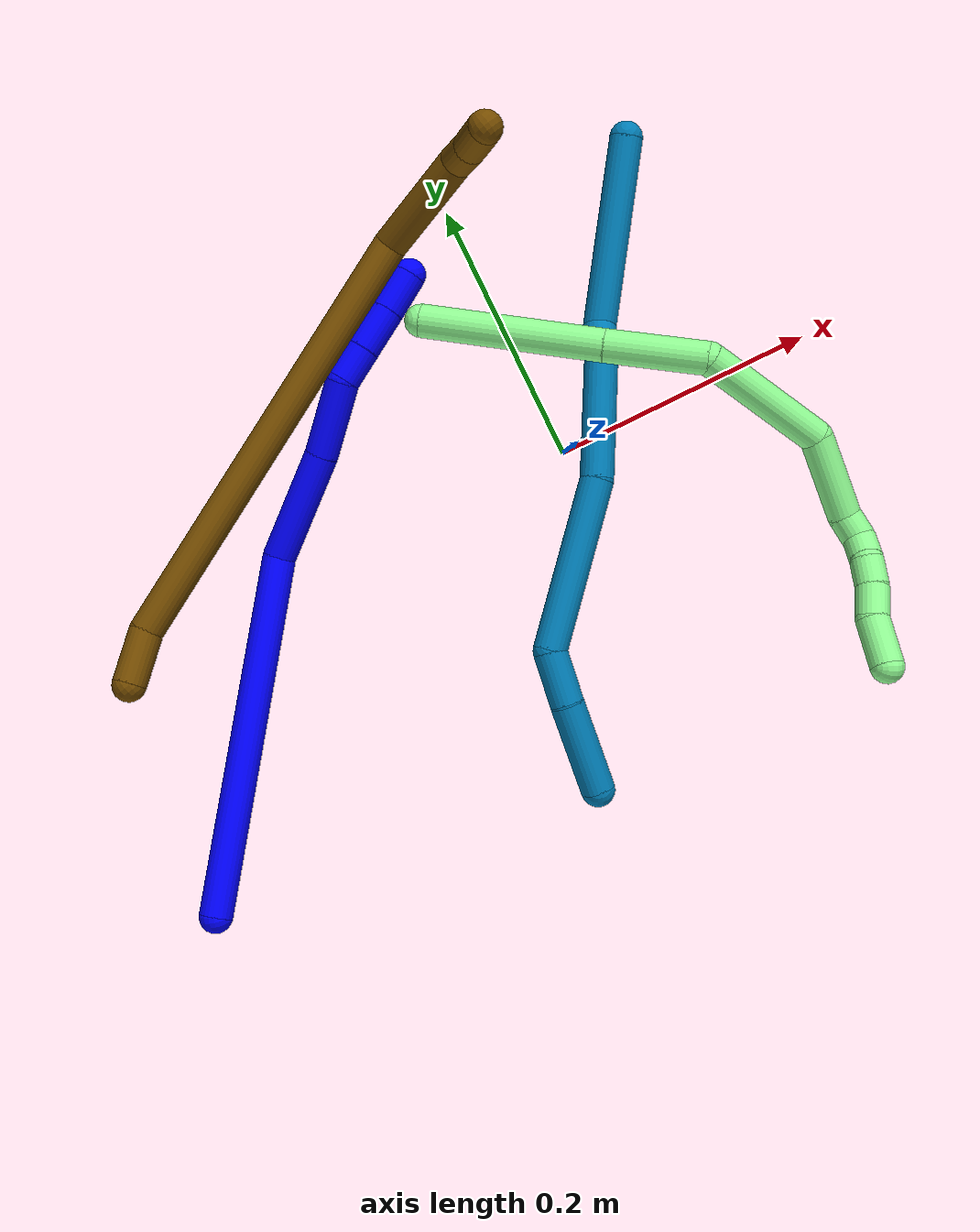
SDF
<sdf version="1.7">
 <world name="default">
  <model name="1">
   <static>0</static>
   <link name="1">
    <collision name="collision-cylinder-e_1_1_4">
     <pose>0.058932 0.015919 -0.118366 -3.0079 0.458381 -2.58269</pose>
     <geometry><cylinder><radius>0.0125</radius><length>0.266359</length></cylinder></geometry>
     <surface>
      <friction><ode><mu>1.16</mu><mu2>1.16</mu2><slip1>0</slip1><slip2>0</slip2></ode></friction>
      <contact><ode><kp>1e+06</kp><kd>1</kd><max_vel>0</max_vel><min_depth>0.001</min_depth></ode></contact>
     </surface>
    </collision>
    <visual name="visual-cylinder-e_1_1_4">
     <pose>0.058932 0.015919 -0.118366 -3.0079 0.458381 -2.58269</pose>
     <geometry><cylinder><radius>0.0125</radius><length>0.266359</length></cylinder></geometry>
     <material><ambient>0 0 1 1</ambient></material>
    </visual>
    <collision name="collision-cylinder-e_2_4_5">
     <pose>0.129483 0.052421 -0.271593 -2.60824 0.279512 -0.95106</pose>
     <geometry><cylinder><radius>0.0125</radius><length>0.084236</length></cylinder></geometry>
     <surface>
      <friction><ode><mu>1.16</mu><mu2>1.16</mu2><slip1>0</slip1><slip2>0</slip2></ode></friction>
      <contact><ode><kp>1e+06</kp><kd>1</kd><max_vel>0</max_vel><min_depth>0.001</min_depth></ode></contact>
     </surface>
    </collision>
    <visual name="visual-cylinder-e_2_4_5">
     <pose>0.129483 0.052421 -0.271593 -2.60824 0.279512 -0.95106</pose>
     <geometry><cylinder><radius>0.0125</radius><length>0.084236</length></cylinder></geometry>
     <material><ambient>0 0 1 1</ambient></material>
    </visual>
    <collision name="collision-cylinder-e_3_5_6">
     <pose>0.146951 0.085204 -0.331885 -2.69431 0.204426 -0.84731</pose>
     <geometry><cylinder><radius>0.0125</radius><length>0.057613</length></cylinder></geometry>
     <surface>
      <friction><ode><mu>1.16</mu><mu2>1.16</mu2><slip1>0</slip1><slip2>0</slip2></ode></friction>
      <contact><ode><kp>1e+06</kp><kd>1</kd><max_vel>0</max_vel><min_depth>0.001</min_depth></ode></contact>
     </surface>
    </collision>
    <visual name="visual-cylinder-e_3_5_6">
     <pose>0.146951 0.085204 -0.331885 -2.69431 0.204426 -0.84731</pose>
     <geometry><cylinder><radius>0.0125</radius><length>0.057613</length></cylinder></geometry>
     <material><ambient>0 0 1 1</ambient></material>
    </visual>
    <collision name="collision-cylinder-e_4_6_7">
     <pose>0.160203 0.103632 -0.366868 -2.56373 0.575913 -1.56722</pose>
     <geometry><cylinder><radius>0.0125</radius><length>0.027191</length></cylinder></geometry>
     <surface>
      <friction><ode><mu>1.16</mu><mu2>1.16</mu2><slip1>0</slip1><slip2>0</slip2></ode></friction>
      <contact><ode><kp>1e+06</kp><kd>1</kd><max_vel>0</max_vel><min_depth>0.001</min_depth></ode></contact>
     </surface>
    </collision>
    <visual name="visual-cylinder-e_4_6_7">
     <pose>0.160203 0.103632 -0.366868 -2.56373 0.575913 -1.56722</pose>
     <geometry><cylinder><radius>0.0125</radius><length>0.027191</length></cylinder></geometry>
     <material><ambient>0 0 1 1</ambient></material>
    </visual>
    <collision name="collision-cylinder-e_5_7_8">
     <pose>0.177124 0.117147 -0.388029 -2.58112 0.606932 -1.65504</pose>
     <geometry><cylinder><radius>0.0125</radius><length>0.033375</length></cylinder></geometry>
     <surface>
      <friction><ode><mu>1.16</mu><mu2>1.16</mu2><slip1>0</slip1><slip2>0</slip2></ode></friction>
      <contact><ode><kp>1e+06</kp><kd>1</kd><max_vel>0</max_vel><min_depth>0.001</min_depth></ode></contact>
     </surface>
    </collision>
    <visual name="visual-cylinder-e_5_7_8">
     <pose>0.177124 0.117147 -0.388029 -2.58112 0.606932 -1.65504</pose>
     <geometry><cylinder><radius>0.0125</radius><length>0.033375</length></cylinder></geometry>
     <material><ambient>0 0 1 1</ambient></material>
    </visual>
    <collision name="collision-cylinder-e_6_8_2">
     <pose>0.195546 0.130984 -0.410665 -2.60556 0.606874 -1.70156</pose>
     <geometry><cylinder><radius>0.0125</radius><length>0.031225</length></cylinder></geometry>
     <surface>
      <friction><ode><mu>1.16</mu><mu2>1.16</mu2><slip1>0</slip1><slip2>0</slip2></ode></friction>
      <contact><ode><kp>1e+06</kp><kd>1</kd><max_vel>0</max_vel><min_depth>0.001</min_depth></ode></contact>
     </surface>
    </collision>
    <visual name="visual-cylinder-e_6_8_2">
     <pose>0.195546 0.130984 -0.410665 -2.60556 0.606874 -1.70156</pose>
     <geometry><cylinder><radius>0.0125</radius><length>0.031225</length></cylinder></geometry>
     <material><ambient>0 0 1 1</ambient></material>
    </visual>
    <collision name="collision-sphere-2">
     <pose>0.20445 0.137533 -0.421691 0 -0 0</pose>
     <geometry><sphere><radius>0.0125</radius></sphere></geometry>
     <surface>
      <friction><ode><mu>1.16</mu><mu2>1.16</mu2><slip1>0</slip1><slip2>0</slip2></ode></friction>
      <contact><ode><kp>1e+06</kp><kd>1</kd><max_vel>0</max_vel><min_depth>0.001</min_depth></ode></contact>
     </surface>
    </collision>
    <visual name="visual-sphere-2">
     <pose>0.20445 0.137533 -0.421691 0 -0 0</pose>
     <geometry><sphere><radius>0.0125</radius></sphere></geometry>
     <material><ambient>0 0 1 1</ambient></material>
    </visual>
    <collision name="collision-sphere-4">
     <pose>0.117863 0.031838 -0.236732 0 -0 0</pose>
     <geometry><sphere><radius>0.0125</radius></sphere></geometry>
     <surface>
      <friction><ode><mu>1.16</mu><mu2>1.16</mu2><slip1>0</slip1><slip2>0</slip2></ode></friction>
      <contact><ode><kp>1e+06</kp><kd>1</kd><max_vel>0</max_vel><min_depth>0.001</min_depth></ode></contact>
     </surface>
    </collision>
    <visual name="visual-sphere-4">
     <pose>0.117863 0.031838 -0.236732 0 -0 0</pose>
     <geometry><sphere><radius>0.0125</radius></sphere></geometry>
     <material><ambient>0 0 1 1</ambient></material>
    </visual>
    <collision name="collision-sphere-1">
     <geometry><sphere><radius>0.0125</radius></sphere></geometry>
     <surface>
      <friction><ode><mu>1.16</mu><mu2>1.16</mu2><slip1>0</slip1><slip2>0</slip2></ode></friction>
      <contact><ode><kp>1e+06</kp><kd>1</kd><max_vel>0</max_vel><min_depth>0.001</min_depth></ode></contact>
     </surface>
    </collision>
    <visual name="visual-sphere-1">
     <geometry><sphere><radius>0.0125</radius></sphere></geometry>
     <material><ambient>0 0 1 1</ambient></material>
    </visual>
    <collision name="collision-sphere-8">
     <pose>0.186642 0.124434 -0.399639 0 -0 0</pose>
     <geometry><sphere><radius>0.0125</radius></sphere></geometry>
     <surface>
      <friction><ode><mu>1.16</mu><mu2>1.16</mu2><slip1>0</slip1><slip2>0</slip2></ode></friction>
      <contact><ode><kp>1e+06</kp><kd>1</kd><max_vel>0</max_vel><min_depth>0.001</min_depth></ode></contact>
     </surface>
    </collision>
    <visual name="visual-sphere-8">
     <pose>0.186642 0.124434 -0.399639 0 -0 0</pose>
     <geometry><sphere><radius>0.0125</radius></sphere></geometry>
     <material><ambient>0 0 1 1</ambient></material>
    </visual>
    <collision name="collision-sphere-5">
     <pose>0.141103 0.073004 -0.306453 0 -0 0</pose>
     <geometry><sphere><radius>0.0125</radius></sphere></geometry>
     <surface>
      <friction><ode><mu>1.16</mu><mu2>1.16</mu2><slip1>0</slip1><slip2>0</slip2></ode></friction>
      <contact><ode><kp>1e+06</kp><kd>1</kd><max_vel>0</max_vel><min_depth>0.001</min_depth></ode></contact>
     </surface>
    </collision>
    <visual name="visual-sphere-5">
     <pose>0.141103 0.073004 -0.306453 0 -0 0</pose>
     <geometry><sphere><radius>0.0125</radius></sphere></geometry>
     <material><ambient>0 0 1 1</ambient></material>
    </visual>
    <collision name="collision-sphere-6">
     <pose>0.152798 0.097404 -0.357317 0 -0 0</pose>
     <geometry><sphere><radius>0.0125</radius></sphere></geometry>
     <surface>
      <friction><ode><mu>1.16</mu><mu2>1.16</mu2><slip1>0</slip1><slip2>0</slip2></ode></friction>
      <contact><ode><kp>1e+06</kp><kd>1</kd><max_vel>0</max_vel><min_depth>0.001</min_depth></ode></contact>
     </surface>
    </collision>
    <visual name="visual-sphere-6">
     <pose>0.152798 0.097404 -0.357317 0 -0 0</pose>
     <geometry><sphere><radius>0.0125</radius></sphere></geometry>
     <material><ambient>0 0 1 1</ambient></material>
    </visual>
    <collision name="collision-sphere-7">
     <pose>0.167607 0.10986 -0.376419 0 -0 0</pose>
     <geometry><sphere><radius>0.0125</radius></sphere></geometry>
     <surface>
      <friction><ode><mu>1.16</mu><mu2>1.16</mu2><slip1>0</slip1><slip2>0</slip2></ode></friction>
      <contact><ode><kp>1e+06</kp><kd>1</kd><max_vel>0</max_vel><min_depth>0.001</min_depth></ode></contact>
     </surface>
    </collision>
    <visual name="visual-sphere-7">
     <pose>0.167607 0.10986 -0.376419 0 -0 0</pose>
     <geometry><sphere><radius>0.0125</radius></sphere></geometry>
     <material><ambient>0 0 1 1</ambient></material>
    </visual>
    <inertial>
     <pose>0.102888 0.048765 -0.218552 0 -0 0</pose>
     <mass>0.5</mass>
     <inertia>
      <ixx>-0.001966</ixx>
      <ixy>0</ixy>
      <ixz>0</ixz>
      <iyy>0.000548</iyy>
      <iyz>0</iyz>
      <izz>-0.000987</izz>
     </inertia>
    </inertial>
   </link>
   <pose>-0.376897 -0.193649 0.04486 1.90108 0.944526 0.016253</pose>
  </model>
  <model name="9">
   <static>0</static>
   <link name="9">
    <collision name="collision-cylinder-e_1_1_4">
     <pose>0.023363 0.012929 -0.020882 -2.58721 0.7604 -1.90423</pose>
     <geometry><cylinder><radius>0.0125</radius><length>0.067795</length></cylinder></geometry>
     <surface>
      <friction><ode><mu>1.16</mu><mu2>1.16</mu2><slip1>0</slip1><slip2>0</slip2></ode></friction>
      <contact><ode><kp>1e+06</kp><kd>1</kd><max_vel>0</max_vel><min_depth>0.001</min_depth></ode></contact>
     </surface>
    </collision>
    <visual name="visual-cylinder-e_1_1_4">
     <pose>0.023363 0.012929 -0.020882 -2.58721 0.7604 -1.90423</pose>
     <geometry><cylinder><radius>0.0125</radius><length>0.067795</length></cylinder></geometry>
     <material><ambient>0 0.490196 0.709804 1</ambient></material>
    </visual>
    <collision name="collision-cylinder-e_2_4_5">
     <pose>0.061213 0.035201 -0.051946 -2.39914 0.80907 -1.66584</pose>
     <geometry><cylinder><radius>0.0125</radius><length>0.040042</length></cylinder></geometry>
     <surface>
      <friction><ode><mu>1.16</mu><mu2>1.16</mu2><slip1>0</slip1><slip2>0</slip2></ode></friction>
      <contact><ode><kp>1e+06</kp><kd>1</kd><max_vel>0</max_vel><min_depth>0.001</min_depth></ode></contact>
     </surface>
    </collision>
    <visual name="visual-cylinder-e_2_4_5">
     <pose>0.061213 0.035201 -0.051946 -2.39914 0.80907 -1.66584</pose>
     <geometry><cylinder><radius>0.0125</radius><length>0.040042</length></cylinder></geometry>
     <material><ambient>0 0.490196 0.709804 1</ambient></material>
    </visual>
    <collision name="collision-cylinder-e_3_5_6">
     <pose>0.095335 0.100058 -0.088369 -2.01236 0.309471 -0.482916</pose>
     <geometry><cylinder><radius>0.0125</radius><length>0.128935</length></cylinder></geometry>
     <surface>
      <friction><ode><mu>1.16</mu><mu2>1.16</mu2><slip1>0</slip1><slip2>0</slip2></ode></friction>
      <contact><ode><kp>1e+06</kp><kd>1</kd><max_vel>0</max_vel><min_depth>0.001</min_depth></ode></contact>
     </surface>
    </collision>
    <visual name="visual-cylinder-e_3_5_6">
     <pose>0.095335 0.100058 -0.088369 -2.01236 0.309471 -0.482916</pose>
     <geometry><cylinder><radius>0.0125</radius><length>0.128935</length></cylinder></geometry>
     <material><ambient>0 0.490196 0.709804 1</ambient></material>
    </visual>
    <collision name="collision-cylinder-e_4_6_7">
     <pose>0.139962 0.192849 -0.132088 -2.00922 0.545606 -0.829316</pose>
     <geometry><cylinder><radius>0.0125</radius><length>0.096324</length></cylinder></geometry>
     <surface>
      <friction><ode><mu>1.16</mu><mu2>1.16</mu2><slip1>0</slip1><slip2>0</slip2></ode></friction>
      <contact><ode><kp>1e+06</kp><kd>1</kd><max_vel>0</max_vel><min_depth>0.001</min_depth></ode></contact>
     </surface>
    </collision>
    <visual name="visual-cylinder-e_4_6_7">
     <pose>0.139962 0.192849 -0.132088 -2.00922 0.545606 -0.829316</pose>
     <geometry><cylinder><radius>0.0125</radius><length>0.096324</length></cylinder></geometry>
     <material><ambient>0 0.490196 0.709804 1</ambient></material>
    </visual>
    <collision name="collision-cylinder-e_5_7_8">
     <pose>0.172494 0.239497 -0.148824 -1.492 0.675944 -0.6281</pose>
     <geometry><cylinder><radius>0.0125</radius><length>0.024103</length></cylinder></geometry>
     <surface>
      <friction><ode><mu>1.16</mu><mu2>1.16</mu2><slip1>0</slip1><slip2>0</slip2></ode></friction>
      <contact><ode><kp>1e+06</kp><kd>1</kd><max_vel>0</max_vel><min_depth>0.001</min_depth></ode></contact>
     </surface>
    </collision>
    <visual name="visual-cylinder-e_5_7_8">
     <pose>0.172494 0.239497 -0.148824 -1.492 0.675944 -0.6281</pose>
     <geometry><cylinder><radius>0.0125</radius><length>0.024103</length></cylinder></geometry>
     <material><ambient>0 0.490196 0.709804 1</ambient></material>
    </visual>
    <collision name="collision-cylinder-e_6_8_2">
     <pose>0.208148 0.304016 -0.183672 -2.14387 0.4047 -0.720274</pose>
     <geometry><cylinder><radius>0.0125</radius><length>0.142802</length></cylinder></geometry>
     <surface>
      <friction><ode><mu>1.16</mu><mu2>1.16</mu2><slip1>0</slip1><slip2>0</slip2></ode></friction>
      <contact><ode><kp>1e+06</kp><kd>1</kd><max_vel>0</max_vel><min_depth>0.001</min_depth></ode></contact>
     </surface>
    </collision>
    <visual name="visual-cylinder-e_6_8_2">
     <pose>0.208148 0.304016 -0.183672 -2.14387 0.4047 -0.720274</pose>
     <geometry><cylinder><radius>0.0125</radius><length>0.142802</length></cylinder></geometry>
     <material><ambient>0 0.490196 0.709804 1</ambient></material>
    </visual>
    <collision name="collision-sphere-2">
     <pose>0.236261 0.359164 -0.21926 0 -0 0</pose>
     <geometry><sphere><radius>0.0125</radius></sphere></geometry>
     <surface>
      <friction><ode><mu>1.16</mu><mu2>1.16</mu2><slip1>0</slip1><slip2>0</slip2></ode></friction>
      <contact><ode><kp>1e+06</kp><kd>1</kd><max_vel>0</max_vel><min_depth>0.001</min_depth></ode></contact>
     </surface>
    </collision>
    <visual name="visual-sphere-2">
     <pose>0.236261 0.359164 -0.21926 0 -0 0</pose>
     <geometry><sphere><radius>0.0125</radius></sphere></geometry>
     <material><ambient>0 0.490196 0.709804 1</ambient></material>
    </visual>
    <collision name="collision-sphere-4">
     <pose>0.046725 0.025859 -0.041765 0 -0 0</pose>
     <geometry><sphere><radius>0.0125</radius></sphere></geometry>
     <surface>
      <friction><ode><mu>1.16</mu><mu2>1.16</mu2><slip1>0</slip1><slip2>0</slip2></ode></friction>
      <contact><ode><kp>1e+06</kp><kd>1</kd><max_vel>0</max_vel><min_depth>0.001</min_depth></ode></contact>
     </surface>
    </collision>
    <visual name="visual-sphere-4">
     <pose>0.046725 0.025859 -0.041765 0 -0 0</pose>
     <geometry><sphere><radius>0.0125</radius></sphere></geometry>
     <material><ambient>0 0.490196 0.709804 1</ambient></material>
    </visual>
    <collision name="collision-sphere-1">
     <geometry><sphere><radius>0.0125</radius></sphere></geometry>
     <surface>
      <friction><ode><mu>1.16</mu><mu2>1.16</mu2><slip1>0</slip1><slip2>0</slip2></ode></friction>
      <contact><ode><kp>1e+06</kp><kd>1</kd><max_vel>0</max_vel><min_depth>0.001</min_depth></ode></contact>
     </surface>
    </collision>
    <visual name="visual-sphere-1">
     <geometry><sphere><radius>0.0125</radius></sphere></geometry>
     <material><ambient>0 0.490196 0.709804 1</ambient></material>
    </visual>
    <collision name="collision-sphere-8">
     <pose>0.180034 0.248869 -0.148084 0 -0 0</pose>
     <geometry><sphere><radius>0.0125</radius></sphere></geometry>
     <surface>
      <friction><ode><mu>1.16</mu><mu2>1.16</mu2><slip1>0</slip1><slip2>0</slip2></ode></friction>
      <contact><ode><kp>1e+06</kp><kd>1</kd><max_vel>0</max_vel><min_depth>0.001</min_depth></ode></contact>
     </surface>
    </collision>
    <visual name="visual-sphere-8">
     <pose>0.180034 0.248869 -0.148084 0 -0 0</pose>
     <geometry><sphere><radius>0.0125</radius></sphere></geometry>
     <material><ambient>0 0.490196 0.709804 1</ambient></material>
    </visual>
    <collision name="collision-sphere-5">
     <pose>0.075701 0.044543 -0.062127 0 -0 0</pose>
     <geometry><sphere><radius>0.0125</radius></sphere></geometry>
     <surface>
      <friction><ode><mu>1.16</mu><mu2>1.16</mu2><slip1>0</slip1><slip2>0</slip2></ode></friction>
      <contact><ode><kp>1e+06</kp><kd>1</kd><max_vel>0</max_vel><min_depth>0.001</min_depth></ode></contact>
     </surface>
    </collision>
    <visual name="visual-sphere-5">
     <pose>0.075701 0.044543 -0.062127 0 -0 0</pose>
     <geometry><sphere><radius>0.0125</radius></sphere></geometry>
     <material><ambient>0 0.490196 0.709804 1</ambient></material>
    </visual>
    <collision name="collision-sphere-6">
     <pose>0.114969 0.155573 -0.11461 0 -0 0</pose>
     <geometry><sphere><radius>0.0125</radius></sphere></geometry>
     <surface>
      <friction><ode><mu>1.16</mu><mu2>1.16</mu2><slip1>0</slip1><slip2>0</slip2></ode></friction>
      <contact><ode><kp>1e+06</kp><kd>1</kd><max_vel>0</max_vel><min_depth>0.001</min_depth></ode></contact>
     </surface>
    </collision>
    <visual name="visual-sphere-6">
     <pose>0.114969 0.155573 -0.11461 0 -0 0</pose>
     <geometry><sphere><radius>0.0125</radius></sphere></geometry>
     <material><ambient>0 0.490196 0.709804 1</ambient></material>
    </visual>
    <collision name="collision-sphere-7">
     <pose>0.164955 0.230125 -0.149565 0 -0 0</pose>
     <geometry><sphere><radius>0.0125</radius></sphere></geometry>
     <surface>
      <friction><ode><mu>1.16</mu><mu2>1.16</mu2><slip1>0</slip1><slip2>0</slip2></ode></friction>
      <contact><ode><kp>1e+06</kp><kd>1</kd><max_vel>0</max_vel><min_depth>0.001</min_depth></ode></contact>
     </surface>
    </collision>
    <visual name="visual-sphere-7">
     <pose>0.164955 0.230125 -0.149565 0 -0 0</pose>
     <geometry><sphere><radius>0.0125</radius></sphere></geometry>
     <material><ambient>0 0.490196 0.709804 1</ambient></material>
    </visual>
    <inertial>
     <pose>0.12738 0.165899 -0.114857 0 -0 0</pose>
     <mass>0.5</mass>
     <inertia>
      <ixx>7.8e-05</ixx>
      <ixy>0</ixy>
      <ixz>0</ixz>
      <iyy>-0.000344</iyy>
      <iyz>0</iyz>
      <izz>-0.000664</izz>
     </inertia>
    </inertial>
   </link>
   <pose>-0.086617 -0.231244 0.050634 -2.7078 0.357368 2.12296</pose>
  </model>
  <model name="12">
   <static>0</static>
   <link name="12">
    <collision name="collision-cylinder-e_1_1_4">
     <pose>0.016419 -0.002026 -0.011129 2.96148 0.967519 2.80118</pose>
     <geometry><cylinder><radius>0.0125</radius><length>0.039876</length></cylinder></geometry>
     <surface>
      <friction><ode><mu>1.16</mu><mu2>1.16</mu2><slip1>0</slip1><slip2>0</slip2></ode></friction>
      <contact><ode><kp>1e+06</kp><kd>1</kd><max_vel>0</max_vel><min_depth>0.001</min_depth></ode></contact>
     </surface>
    </collision>
    <visual name="visual-cylinder-e_1_1_4">
     <pose>0.016419 -0.002026 -0.011129 2.96148 0.967519 2.80118</pose>
     <geometry><cylinder><radius>0.0125</radius><length>0.039876</length></cylinder></geometry>
     <material><ambient>0.466667 0.301961 0 1</ambient></material>
    </visual>
    <collision name="collision-cylinder-e_2_4_5">
     <pose>0.1858 0.014108 -0.076215 -2.81693 1.21449 -2.67864</pose>
     <geometry><cylinder><radius>0.0125</radius><length>0.326428</length></cylinder></geometry>
     <surface>
      <friction><ode><mu>1.16</mu><mu2>1.16</mu2><slip1>0</slip1><slip2>0</slip2></ode></friction>
      <contact><ode><kp>1e+06</kp><kd>1</kd><max_vel>0</max_vel><min_depth>0.001</min_depth></ode></contact>
     </surface>
    </collision>
    <visual name="visual-cylinder-e_2_4_5">
     <pose>0.1858 0.014108 -0.076215 -2.81693 1.21449 -2.67864</pose>
     <geometry><cylinder><radius>0.0125</radius><length>0.326428</length></cylinder></geometry>
     <material><ambient>0.466667 0.301961 0 1</ambient></material>
    </visual>
    <collision name="collision-cylinder-e_3_5_6">
     <pose>0.369047 0.058365 -0.136642 -1.81379 0.844771 -1.04284</pose>
     <geometry><cylinder><radius>0.0125</radius><length>0.080994</length></cylinder></geometry>
     <surface>
      <friction><ode><mu>1.16</mu><mu2>1.16</mu2><slip1>0</slip1><slip2>0</slip2></ode></friction>
      <contact><ode><kp>1e+06</kp><kd>1</kd><max_vel>0</max_vel><min_depth>0.001</min_depth></ode></contact>
     </surface>
    </collision>
    <visual name="visual-cylinder-e_3_5_6">
     <pose>0.369047 0.058365 -0.136642 -1.81379 0.844771 -1.04284</pose>
     <geometry><cylinder><radius>0.0125</radius><length>0.080994</length></cylinder></geometry>
     <material><ambient>0.466667 0.301961 0 1</ambient></material>
    </visual>
    <collision name="collision-cylinder-e_4_6_7">
     <pose>0.403239 0.095406 -0.143039 -1.56419 0.342886 -0.340673</pose>
     <geometry><cylinder><radius>0.0125</radius><length>0.023245</length></cylinder></geometry>
     <surface>
      <friction><ode><mu>1.16</mu><mu2>1.16</mu2><slip1>0</slip1><slip2>0</slip2></ode></friction>
      <contact><ode><kp>1e+06</kp><kd>1</kd><max_vel>0</max_vel><min_depth>0.001</min_depth></ode></contact>
     </surface>
    </collision>
    <visual name="visual-cylinder-e_4_6_7">
     <pose>0.403239 0.095406 -0.143039 -1.56419 0.342886 -0.340673</pose>
     <geometry><cylinder><radius>0.0125</radius><length>0.023245</length></cylinder></geometry>
     <material><ambient>0.466667 0.301961 0 1</ambient></material>
    </visual>
    <collision name="collision-cylinder-e_5_7_2">
     <pose>0.41091 0.120578 -0.143585 -1.61426 0.258379 -0.269724</pose>
     <geometry><cylinder><radius>0.0125</radius><length>0.029457</length></cylinder></geometry>
     <surface>
      <friction><ode><mu>1.16</mu><mu2>1.16</mu2><slip1>0</slip1><slip2>0</slip2></ode></friction>
      <contact><ode><kp>1e+06</kp><kd>1</kd><max_vel>0</max_vel><min_depth>0.001</min_depth></ode></contact>
     </surface>
    </collision>
    <visual name="visual-cylinder-e_5_7_2">
     <pose>0.41091 0.120578 -0.143585 -1.61426 0.258379 -0.269724</pose>
     <geometry><cylinder><radius>0.0125</radius><length>0.029457</length></cylinder></geometry>
     <material><ambient>0.466667 0.301961 0 1</ambient></material>
    </visual>
    <collision name="collision-sphere-2">
     <pose>0.414673 0.134804 -0.144204 0 -0 0</pose>
     <geometry><sphere><radius>0.0125</radius></sphere></geometry>
     <surface>
      <friction><ode><mu>1.16</mu><mu2>1.16</mu2><slip1>0</slip1><slip2>0</slip2></ode></friction>
      <contact><ode><kp>1e+06</kp><kd>1</kd><max_vel>0</max_vel><min_depth>0.001</min_depth></ode></contact>
     </surface>
    </collision>
    <visual name="visual-sphere-2">
     <pose>0.414673 0.134804 -0.144204 0 -0 0</pose>
     <geometry><sphere><radius>0.0125</radius></sphere></geometry>
     <material><ambient>0.466667 0.301961 0 1</ambient></material>
    </visual>
    <collision name="collision-sphere-7">
     <pose>0.407147 0.106352 -0.142966 0 -0 0</pose>
     <geometry><sphere><radius>0.0125</radius></sphere></geometry>
     <surface>
      <friction><ode><mu>1.16</mu><mu2>1.16</mu2><slip1>0</slip1><slip2>0</slip2></ode></friction>
      <contact><ode><kp>1e+06</kp><kd>1</kd><max_vel>0</max_vel><min_depth>0.001</min_depth></ode></contact>
     </surface>
    </collision>
    <visual name="visual-sphere-7">
     <pose>0.407147 0.106352 -0.142966 0 -0 0</pose>
     <geometry><sphere><radius>0.0125</radius></sphere></geometry>
     <material><ambient>0.466667 0.301961 0 1</ambient></material>
    </visual>
    <collision name="collision-sphere-6">
     <pose>0.399331 0.084461 -0.143111 0 -0 0</pose>
     <geometry><sphere><radius>0.0125</radius></sphere></geometry>
     <surface>
      <friction><ode><mu>1.16</mu><mu2>1.16</mu2><slip1>0</slip1><slip2>0</slip2></ode></friction>
      <contact><ode><kp>1e+06</kp><kd>1</kd><max_vel>0</max_vel><min_depth>0.001</min_depth></ode></contact>
     </surface>
    </collision>
    <visual name="visual-sphere-6">
     <pose>0.399331 0.084461 -0.143111 0 -0 0</pose>
     <geometry><sphere><radius>0.0125</radius></sphere></geometry>
     <material><ambient>0.466667 0.301961 0 1</ambient></material>
    </visual>
    <collision name="collision-sphere-5">
     <pose>0.338763 0.032268 -0.130173 0 -0 0</pose>
     <geometry><sphere><radius>0.0125</radius></sphere></geometry>
     <surface>
      <friction><ode><mu>1.16</mu><mu2>1.16</mu2><slip1>0</slip1><slip2>0</slip2></ode></friction>
      <contact><ode><kp>1e+06</kp><kd>1</kd><max_vel>0</max_vel><min_depth>0.001</min_depth></ode></contact>
     </surface>
    </collision>
    <visual name="visual-sphere-5">
     <pose>0.338763 0.032268 -0.130173 0 -0 0</pose>
     <geometry><sphere><radius>0.0125</radius></sphere></geometry>
     <material><ambient>0.466667 0.301961 0 1</ambient></material>
    </visual>
    <collision name="collision-sphere-1">
     <geometry><sphere><radius>0.0125</radius></sphere></geometry>
     <surface>
      <friction><ode><mu>1.16</mu><mu2>1.16</mu2><slip1>0</slip1><slip2>0</slip2></ode></friction>
      <contact><ode><kp>1e+06</kp><kd>1</kd><max_vel>0</max_vel><min_depth>0.001</min_depth></ode></contact>
     </surface>
    </collision>
    <visual name="visual-sphere-1">
     <geometry><sphere><radius>0.0125</radius></sphere></geometry>
     <material><ambient>0.466667 0.301961 0 1</ambient></material>
    </visual>
    <collision name="collision-sphere-4">
     <pose>0.032837 -0.004053 -0.022257 0 -0 0</pose>
     <geometry><sphere><radius>0.0125</radius></sphere></geometry>
     <surface>
      <friction><ode><mu>1.16</mu><mu2>1.16</mu2><slip1>0</slip1><slip2>0</slip2></ode></friction>
      <contact><ode><kp>1e+06</kp><kd>1</kd><max_vel>0</max_vel><min_depth>0.001</min_depth></ode></contact>
     </surface>
    </collision>
    <visual name="visual-sphere-4">
     <pose>0.032837 -0.004053 -0.022257 0 -0 0</pose>
     <geometry><sphere><radius>0.0125</radius></sphere></geometry>
     <material><ambient>0.466667 0.301961 0 1</ambient></material>
    </visual>
    <inertial>
     <pose>0.225346 0.030042 -0.087888 0 -0 0</pose>
     <mass>0.5</mass>
     <inertia>
      <ixx>-0.00134</ixx>
      <ixy>0</ixy>
      <ixz>0</ixz>
      <iyy>0.002418</iyy>
      <iyz>0</iyz>
      <izz>-0.003141</izz>
     </inertia>
    </inertial>
   </link>
   <pose>-0.352204 -0.014555 0.082446 1.62916 0.182605 0.23057</pose>
  </model>
  <model name="13">
   <static>0</static>
   <link name="13">
    <collision name="collision-cylinder-e_1_1_4">
     <pose>-0.033571 -0.027706 0.053154 0.480489 -0.510533 -0.127684</pose>
     <geometry><cylinder><radius>0.0125</radius><length>0.137405</length></cylinder></geometry>
     <surface>
      <friction><ode><mu>1.16</mu><mu2>1.16</mu2><slip1>0</slip1><slip2>0</slip2></ode></friction>
      <contact><ode><kp>1e+06</kp><kd>1</kd><max_vel>0</max_vel><min_depth>0.001</min_depth></ode></contact>
     </surface>
    </collision>
    <visual name="visual-cylinder-e_1_1_4">
     <pose>-0.033571 -0.027706 0.053154 0.480489 -0.510533 -0.127684</pose>
     <geometry><cylinder><radius>0.0125</radius><length>0.137405</length></cylinder></geometry>
     <material><ambient>0.564706 0.984314 0.572549 1</ambient></material>
    </visual>
    <collision name="collision-cylinder-e_2_4_5">
     <pose>-0.085623 -0.070144 0.135962 0.461094 -0.50908 -0.121989</pose>
     <geometry><cylinder><radius>0.0125</radius><length>0.075839</length></cylinder></geometry>
     <surface>
      <friction><ode><mu>1.16</mu><mu2>1.16</mu2><slip1>0</slip1><slip2>0</slip2></ode></friction>
      <contact><ode><kp>1e+06</kp><kd>1</kd><max_vel>0</max_vel><min_depth>0.001</min_depth></ode></contact>
     </surface>
    </collision>
    <visual name="visual-cylinder-e_2_4_5">
     <pose>-0.085623 -0.070144 0.135962 0.461094 -0.50908 -0.121989</pose>
     <geometry><cylinder><radius>0.0125</radius><length>0.075839</length></cylinder></geometry>
     <material><ambient>0.564706 0.984314 0.572549 1</ambient></material>
    </visual>
    <collision name="collision-cylinder-e_3_5_6">
     <pose>-0.099052 -0.113628 0.206949 0.60778 0.099995 0.031382</pose>
     <geometry><cylinder><radius>0.0125</radius><length>0.101207</length></cylinder></geometry>
     <surface>
      <friction><ode><mu>1.16</mu><mu2>1.16</mu2><slip1>0</slip1><slip2>0</slip2></ode></friction>
      <contact><ode><kp>1e+06</kp><kd>1</kd><max_vel>0</max_vel><min_depth>0.001</min_depth></ode></contact>
     </surface>
    </collision>
    <visual name="visual-cylinder-e_3_5_6">
     <pose>-0.099052 -0.113628 0.206949 0.60778 0.099995 0.031382</pose>
     <geometry><cylinder><radius>0.0125</radius><length>0.101207</length></cylinder></geometry>
     <material><ambient>0.564706 0.984314 0.572549 1</ambient></material>
    </visual>
    <collision name="collision-cylinder-e_4_6_7">
     <pose>-0.081606 -0.168334 0.261054 1.11349 0.404831 0.2541</pose>
     <geometry><cylinder><radius>0.0125</radius><length>0.062939</length></cylinder></geometry>
     <surface>
      <friction><ode><mu>1.16</mu><mu2>1.16</mu2><slip1>0</slip1><slip2>0</slip2></ode></friction>
      <contact><ode><kp>1e+06</kp><kd>1</kd><max_vel>0</max_vel><min_depth>0.001</min_depth></ode></contact>
     </surface>
    </collision>
    <visual name="visual-cylinder-e_4_6_7">
     <pose>-0.081606 -0.168334 0.261054 1.11349 0.404831 0.2541</pose>
     <geometry><cylinder><radius>0.0125</radius><length>0.062939</length></cylinder></geometry>
     <material><ambient>0.564706 0.984314 0.572549 1</ambient></material>
    </visual>
    <collision name="collision-cylinder-e_5_7_8">
     <pose>-0.068216 -0.20331 0.278249 1.11499 0.098748 0.061597</pose>
     <geometry><cylinder><radius>0.0125</radius><length>0.020196</length></cylinder></geometry>
     <surface>
      <friction><ode><mu>1.16</mu><mu2>1.16</mu2><slip1>0</slip1><slip2>0</slip2></ode></friction>
      <contact><ode><kp>1e+06</kp><kd>1</kd><max_vel>0</max_vel><min_depth>0.001</min_depth></ode></contact>
     </surface>
    </collision>
    <visual name="visual-cylinder-e_5_7_8">
     <pose>-0.068216 -0.20331 0.278249 1.11499 0.098748 0.061597</pose>
     <geometry><cylinder><radius>0.0125</radius><length>0.020196</length></cylinder></geometry>
     <material><ambient>0.564706 0.984314 0.572549 1</ambient></material>
    </visual>
    <collision name="collision-cylinder-e_6_8_9">
     <pose>-0.070093 -0.221884 0.280654 1.77907 -0.286211 -0.351777</pose>
     <geometry><cylinder><radius>0.0125</radius><length>0.020351</length></cylinder></geometry>
     <surface>
      <friction><ode><mu>1.16</mu><mu2>1.16</mu2><slip1>0</slip1><slip2>0</slip2></ode></friction>
      <contact><ode><kp>1e+06</kp><kd>1</kd><max_vel>0</max_vel><min_depth>0.001</min_depth></ode></contact>
     </surface>
    </collision>
    <visual name="visual-cylinder-e_6_8_9">
     <pose>-0.070093 -0.221884 0.280654 1.77907 -0.286211 -0.351777</pose>
     <geometry><cylinder><radius>0.0125</radius><length>0.020351</length></cylinder></geometry>
     <material><ambient>0.564706 0.984314 0.572549 1</ambient></material>
    </visual>
    <collision name="collision-cylinder-e_7_9_10">
     <pose>-0.072604 -0.241936 0.277814 1.6489 0.034361 0.037155</pose>
     <geometry><cylinder><radius>0.0125</radius><length>0.021081</length></cylinder></geometry>
     <surface>
      <friction><ode><mu>1.16</mu><mu2>1.16</mu2><slip1>0</slip1><slip2>0</slip2></ode></friction>
      <contact><ode><kp>1e+06</kp><kd>1</kd><max_vel>0</max_vel><min_depth>0.001</min_depth></ode></contact>
     </surface>
    </collision>
    <visual name="visual-cylinder-e_7_9_10">
     <pose>-0.072604 -0.241936 0.277814 1.6489 0.034361 0.037155</pose>
     <geometry><cylinder><radius>0.0125</radius><length>0.021081</length></cylinder></geometry>
     <material><ambient>0.564706 0.984314 0.572549 1</ambient></material>
    </visual>
    <collision name="collision-cylinder-e_8_10_11">
     <pose>-0.070973 -0.264237 0.273842 1.8317 0.103513 0.134691</pose>
     <geometry><cylinder><radius>0.0125</radius><length>0.024555</length></cylinder></geometry>
     <surface>
      <friction><ode><mu>1.16</mu><mu2>1.16</mu2><slip1>0</slip1><slip2>0</slip2></ode></friction>
      <contact><ode><kp>1e+06</kp><kd>1</kd><max_vel>0</max_vel><min_depth>0.001</min_depth></ode></contact>
     </surface>
    </collision>
    <visual name="visual-cylinder-e_8_10_11">
     <pose>-0.070973 -0.264237 0.273842 1.8317 0.103513 0.134691</pose>
     <geometry><cylinder><radius>0.0125</radius><length>0.024555</length></cylinder></geometry>
     <material><ambient>0.564706 0.984314 0.572549 1</ambient></material>
    </visual>
    <collision name="collision-cylinder-e_9_11_2">
     <pose>-0.069903 -0.294249 0.270714 1.56959 -0.010921 -0.010908</pose>
     <geometry><cylinder><radius>0.0125</radius><length>0.036428</length></cylinder></geometry>
     <surface>
      <friction><ode><mu>1.16</mu><mu2>1.16</mu2><slip1>0</slip1><slip2>0</slip2></ode></friction>
      <contact><ode><kp>1e+06</kp><kd>1</kd><max_vel>0</max_vel><min_depth>0.001</min_depth></ode></contact>
     </surface>
    </collision>
    <visual name="visual-cylinder-e_9_11_2">
     <pose>-0.069903 -0.294249 0.270714 1.56959 -0.010921 -0.010908</pose>
     <geometry><cylinder><radius>0.0125</radius><length>0.036428</length></cylinder></geometry>
     <material><ambient>0.564706 0.984314 0.572549 1</ambient></material>
    </visual>
    <collision name="collision-sphere-2">
     <pose>-0.070102 -0.312462 0.270736 0 -0 0</pose>
     <geometry><sphere><radius>0.0125</radius></sphere></geometry>
     <surface>
      <friction><ode><mu>1.16</mu><mu2>1.16</mu2><slip1>0</slip1><slip2>0</slip2></ode></friction>
      <contact><ode><kp>1e+06</kp><kd>1</kd><max_vel>0</max_vel><min_depth>0.001</min_depth></ode></contact>
     </surface>
    </collision>
    <visual name="visual-sphere-2">
     <pose>-0.070102 -0.312462 0.270736 0 -0 0</pose>
     <geometry><sphere><radius>0.0125</radius></sphere></geometry>
     <material><ambient>0.564706 0.984314 0.572549 1</ambient></material>
    </visual>
    <collision name="collision-sphere-11">
     <pose>-0.069704 -0.276036 0.270692 0 -0 0</pose>
     <geometry><sphere><radius>0.0125</radius></sphere></geometry>
     <surface>
      <friction><ode><mu>1.16</mu><mu2>1.16</mu2><slip1>0</slip1><slip2>0</slip2></ode></friction>
      <contact><ode><kp>1e+06</kp><kd>1</kd><max_vel>0</max_vel><min_depth>0.001</min_depth></ode></contact>
     </surface>
    </collision>
    <visual name="visual-sphere-11">
     <pose>-0.069704 -0.276036 0.270692 0 -0 0</pose>
     <geometry><sphere><radius>0.0125</radius></sphere></geometry>
     <material><ambient>0.564706 0.984314 0.572549 1</ambient></material>
    </visual>
    <collision name="collision-sphere-10">
     <pose>-0.072241 -0.252439 0.276992 0 -0 0</pose>
     <geometry><sphere><radius>0.0125</radius></sphere></geometry>
     <surface>
      <friction><ode><mu>1.16</mu><mu2>1.16</mu2><slip1>0</slip1><slip2>0</slip2></ode></friction>
      <contact><ode><kp>1e+06</kp><kd>1</kd><max_vel>0</max_vel><min_depth>0.001</min_depth></ode></contact>
     </surface>
    </collision>
    <visual name="visual-sphere-10">
     <pose>-0.072241 -0.252439 0.276992 0 -0 0</pose>
     <geometry><sphere><radius>0.0125</radius></sphere></geometry>
     <material><ambient>0.564706 0.984314 0.572549 1</ambient></material>
    </visual>
    <collision name="collision-sphere-9">
     <pose>-0.072966 -0.231434 0.278636 0 -0 0</pose>
     <geometry><sphere><radius>0.0125</radius></sphere></geometry>
     <surface>
      <friction><ode><mu>1.16</mu><mu2>1.16</mu2><slip1>0</slip1><slip2>0</slip2></ode></friction>
      <contact><ode><kp>1e+06</kp><kd>1</kd><max_vel>0</max_vel><min_depth>0.001</min_depth></ode></contact>
     </surface>
    </collision>
    <visual name="visual-sphere-9">
     <pose>-0.072966 -0.231434 0.278636 0 -0 0</pose>
     <geometry><sphere><radius>0.0125</radius></sphere></geometry>
     <material><ambient>0.564706 0.984314 0.572549 1</ambient></material>
    </visual>
    <collision name="collision-sphere-4">
     <pose>-0.067142 -0.055412 0.106309 0 -0 0</pose>
     <geometry><sphere><radius>0.0125</radius></sphere></geometry>
     <surface>
      <friction><ode><mu>1.16</mu><mu2>1.16</mu2><slip1>0</slip1><slip2>0</slip2></ode></friction>
      <contact><ode><kp>1e+06</kp><kd>1</kd><max_vel>0</max_vel><min_depth>0.001</min_depth></ode></contact>
     </surface>
    </collision>
    <visual name="visual-sphere-4">
     <pose>-0.067142 -0.055412 0.106309 0 -0 0</pose>
     <geometry><sphere><radius>0.0125</radius></sphere></geometry>
     <material><ambient>0.564706 0.984314 0.572549 1</ambient></material>
    </visual>
    <collision name="collision-sphere-1">
     <geometry><sphere><radius>0.0125</radius></sphere></geometry>
     <surface>
      <friction><ode><mu>1.16</mu><mu2>1.16</mu2><slip1>0</slip1><slip2>0</slip2></ode></friction>
      <contact><ode><kp>1e+06</kp><kd>1</kd><max_vel>0</max_vel><min_depth>0.001</min_depth></ode></contact>
     </surface>
    </collision>
    <visual name="visual-sphere-1">
     <geometry><sphere><radius>0.0125</radius></sphere></geometry>
     <material><ambient>0.564706 0.984314 0.572549 1</ambient></material>
    </visual>
    <collision name="collision-sphere-8">
     <pose>-0.06722 -0.212333 0.282672 0 -0 0</pose>
     <geometry><sphere><radius>0.0125</radius></sphere></geometry>
     <surface>
      <friction><ode><mu>1.16</mu><mu2>1.16</mu2><slip1>0</slip1><slip2>0</slip2></ode></friction>
      <contact><ode><kp>1e+06</kp><kd>1</kd><max_vel>0</max_vel><min_depth>0.001</min_depth></ode></contact>
     </surface>
    </collision>
    <visual name="visual-sphere-8">
     <pose>-0.06722 -0.212333 0.282672 0 -0 0</pose>
     <geometry><sphere><radius>0.0125</radius></sphere></geometry>
     <material><ambient>0.564706 0.984314 0.572549 1</ambient></material>
    </visual>
    <collision name="collision-sphere-5">
     <pose>-0.104104 -0.084876 0.165615 0 -0 0</pose>
     <geometry><sphere><radius>0.0125</radius></sphere></geometry>
     <surface>
      <friction><ode><mu>1.16</mu><mu2>1.16</mu2><slip1>0</slip1><slip2>0</slip2></ode></friction>
      <contact><ode><kp>1e+06</kp><kd>1</kd><max_vel>0</max_vel><min_depth>0.001</min_depth></ode></contact>
     </surface>
    </collision>
    <visual name="visual-sphere-5">
     <pose>-0.104104 -0.084876 0.165615 0 -0 0</pose>
     <geometry><sphere><radius>0.0125</radius></sphere></geometry>
     <material><ambient>0.564706 0.984314 0.572549 1</ambient></material>
    </visual>
    <collision name="collision-sphere-6">
     <pose>-0.094001 -0.142381 0.248283 0 -0 0</pose>
     <geometry><sphere><radius>0.0125</radius></sphere></geometry>
     <surface>
      <friction><ode><mu>1.16</mu><mu2>1.16</mu2><slip1>0</slip1><slip2>0</slip2></ode></friction>
      <contact><ode><kp>1e+06</kp><kd>1</kd><max_vel>0</max_vel><min_depth>0.001</min_depth></ode></contact>
     </surface>
    </collision>
    <visual name="visual-sphere-6">
     <pose>-0.094001 -0.142381 0.248283 0 -0 0</pose>
     <geometry><sphere><radius>0.0125</radius></sphere></geometry>
     <material><ambient>0.564706 0.984314 0.572549 1</ambient></material>
    </visual>
    <collision name="collision-sphere-7">
     <pose>-0.069211 -0.194288 0.273826 0 -0 0</pose>
     <geometry><sphere><radius>0.0125</radius></sphere></geometry>
     <surface>
      <friction><ode><mu>1.16</mu><mu2>1.16</mu2><slip1>0</slip1><slip2>0</slip2></ode></friction>
      <contact><ode><kp>1e+06</kp><kd>1</kd><max_vel>0</max_vel><min_depth>0.001</min_depth></ode></contact>
     </surface>
    </collision>
    <visual name="visual-sphere-7">
     <pose>-0.069211 -0.194288 0.273826 0 -0 0</pose>
     <geometry><sphere><radius>0.0125</radius></sphere></geometry>
     <material><ambient>0.564706 0.984314 0.572549 1</ambient></material>
    </visual>
    <inertial>
     <pose>-0.069782 -0.124301 0.177527 0 -0 0</pose>
     <mass>0.5</mass>
     <inertia>
      <ixx>0.000322</ixx>
      <ixy>0</ixy>
      <ixz>0</ixz>
      <iyy>0.000278</iyy>
      <iyz>0</iyz>
      <izz>0.000317</izz>
     </inertia>
    </inertial>
   </link>
   <pose>-0.053028 0.133021 0.02857 -2.47635 0.958987 -2.80559</pose>
  </model>
 </world>
</sdf>
